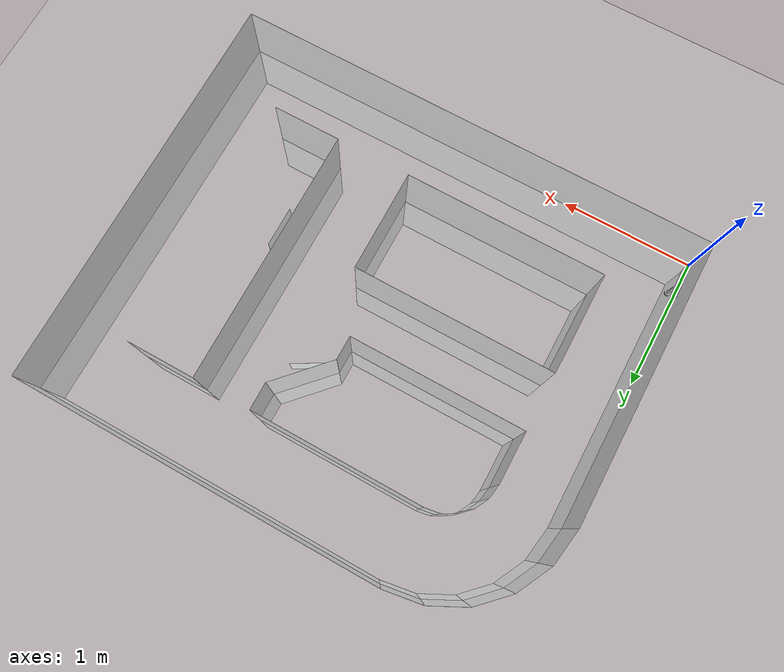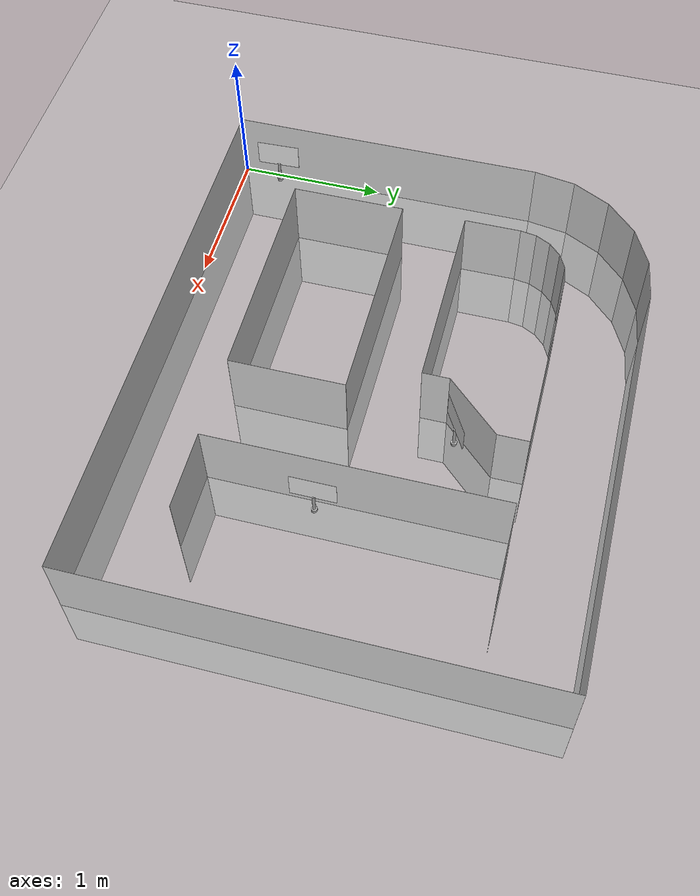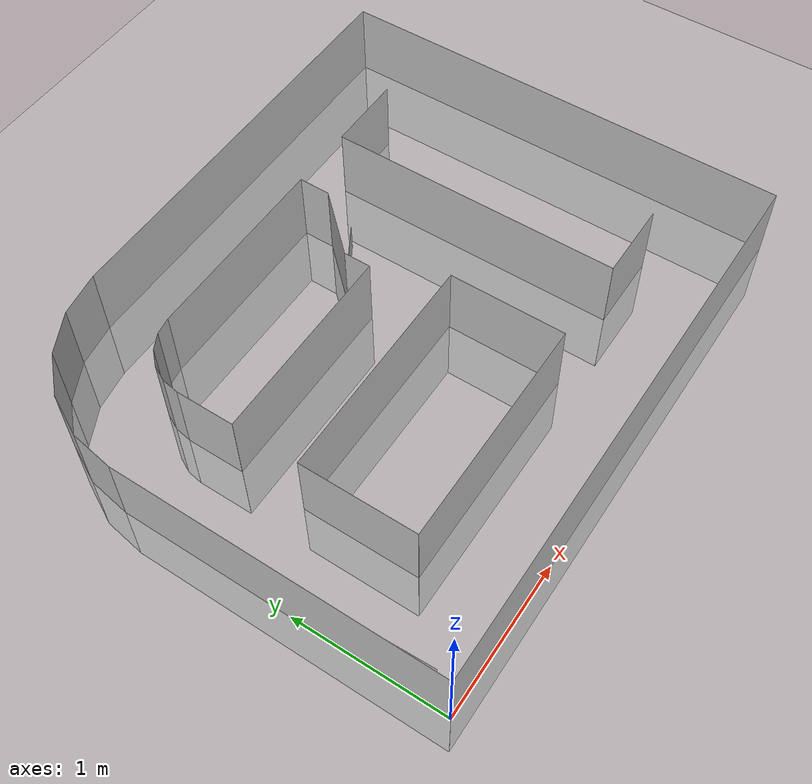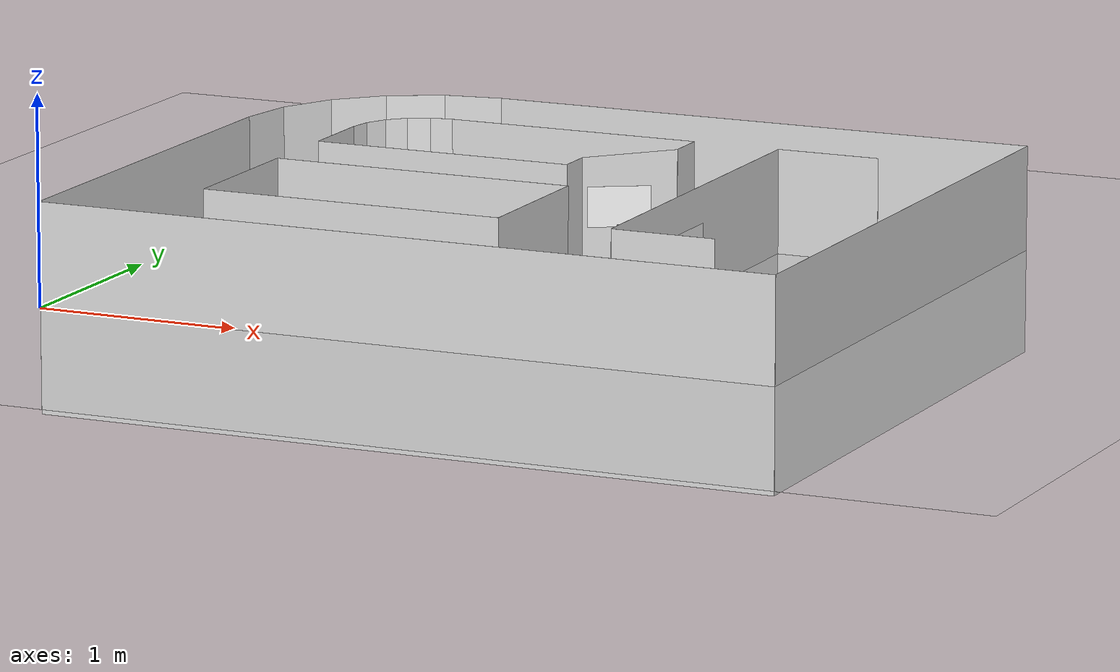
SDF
<sdf version="1.6">
 <world name="default">
  <light name="sun" type="directional">
   <pose>0 0 10 0 -0 0</pose>
   <diffuse>0.8 0.8 0.8 1</diffuse>
   <specular>0.1 0.1 0.1 1</specular>
   <attenuation>
    <range>1000</range>
    <constant>0.9</constant>
    <linear>0.01</linear>
    <quadratic>0.001</quadratic>
   </attenuation>
   <direction>-0.5 0.5 -1</direction>
  </light>
  <model name="ground_plane">
   <static>1</static>
   <link name="link">
    <collision name="collision">
     <geometry><plane><normal>0 0 1</normal><size>100 100</size></plane></geometry>
     <surface><friction><ode><mu>100</mu><mu2>50</mu2></ode></friction></surface>
    </collision>
    <visual name="visual">
     <cast_shadows>0</cast_shadows>
     <geometry><plane><normal>0 0 1</normal><size>100 100</size></plane></geometry>
     <material>
      <script><uri>file://media/materials/scripts/gazebo.material</uri><name>Gazebo/Grey</name></script>
     </material>
    </visual>
   </link>
  </model>
  <model name="wall_0">
   <static>1</static>
   <link name="link">
    <collision name="collision"><geometry><box><size>2.1336 0.001 1</size></box></geometry></collision>
    <visual name="visual">
     <geometry><box><size>2.1336 0.001 1</size></box></geometry>
     <material>
      <script><name>Gazebo/White</name><uri>file://media/materials/scripts/gazebo.material</uri></script>
     </material>
    </visual>
   </link>
   <pose>0 1.0668 0 0 -0 1.5708</pose>
  </model>
  <model name="wall_1">
   <static>1</static>
   <link name="link">
    <collision name="collision"><geometry><box><size>0.286088 0.001 1</size></box></geometry></collision>
    <visual name="visual">
     <geometry><box><size>0.286088 0.001 1</size></box></geometry>
     <material>
      <script><name>Gazebo/White</name><uri>file://media/materials/scripts/gazebo.material</uri></script>
     </material>
    </visual>
   </link>
   <pose>0.022377 2.27489 0 0 -0 1.41372</pose>
  </model>
  <model name="wall_2">
   <static>1</static>
   <link name="link">
    <collision name="collision"><geometry><box><size>0.286088 0.001 1</size></box></geometry></collision>
    <visual name="visual">
     <geometry><box><size>0.286088 0.001 1</size></box></geometry>
     <material>
      <script><name>Gazebo/White</name><uri>file://media/materials/scripts/gazebo.material</uri></script>
     </material>
    </visual>
   </link>
   <pose>0.109695 2.54362 0 0 -0 1.09956</pose>
  </model>
  <model name="wall_3">
   <static>1</static>
   <link name="link">
    <collision name="collision"><geometry><box><size>0.286088 0.001 1</size></box></geometry></collision>
    <visual name="visual">
     <geometry><box><size>0.286088 0.001 1</size></box></geometry>
     <material>
      <script><name>Gazebo/White</name><uri>file://media/materials/scripts/gazebo.material</uri></script>
     </material>
    </visual>
   </link>
   <pose>0.275783 2.77222 0 0 -0 0.785398</pose>
  </model>
  <model name="wall_4">
   <static>1</static>
   <link name="link">
    <collision name="collision"><geometry><box><size>0.286088 0.001 1</size></box></geometry></collision>
    <visual name="visual">
     <geometry><box><size>0.286088 0.001 1</size></box></geometry>
     <material>
      <script><name>Gazebo/White</name><uri>file://media/materials/scripts/gazebo.material</uri></script>
     </material>
    </visual>
   </link>
   <pose>0.504383 2.93831 0 0 -0 0.471239</pose>
  </model>
  <model name="wall_5">
   <static>1</static>
   <link name="link">
    <collision name="collision"><geometry><box><size>0.286088 0.001 1</size></box></geometry></collision>
    <visual name="visual">
     <geometry><box><size>0.286088 0.001 1</size></box></geometry>
     <material>
      <script><name>Gazebo/White</name><uri>file://media/materials/scripts/gazebo.material</uri></script>
     </material>
    </visual>
   </link>
   <pose>0.773119 3.02563 0 0 -0 0.15708</pose>
  </model>
  <model name="wall_6">
   <static>1</static>
   <link name="link">
    <collision name="collision"><geometry><box><size>2.74321 0.001 1</size></box></geometry></collision>
    <visual name="visual">
     <geometry><box><size>2.74321 0.001 1</size></box></geometry>
     <material>
      <script><name>Gazebo/White</name><uri>file://media/materials/scripts/gazebo.material</uri></script>
     </material>
    </visual>
   </link>
   <pose>2.286 3.04801 0 0 -0 0</pose>
  </model>
  <model name="wall_7">
   <static>1</static>
   <link name="link">
    <collision name="collision"><geometry><box><size>3.04801 0.001 1</size></box></geometry></collision>
    <visual name="visual">
     <geometry><box><size>3.04801 0.001 1</size></box></geometry>
     <material>
      <script><name>Gazebo/White</name><uri>file://media/materials/scripts/gazebo.material</uri></script>
     </material>
    </visual>
   </link>
   <pose>3.65761 1.524 0 0 0 -1.5708</pose>
  </model>
  <model name="wall_8">
   <static>1</static>
   <link name="link">
    <collision name="collision"><geometry><box><size>3.65761 0.001 1</size></box></geometry></collision>
    <visual name="visual">
     <geometry><box><size>3.65761 0.001 1</size></box></geometry>
     <material>
      <script><name>Gazebo/White</name><uri>file://media/materials/scripts/gazebo.material</uri></script>
     </material>
    </visual>
   </link>
   <pose>1.8288 0 0 0 0 -3.14159</pose>
  </model>
  <model name="wall_9">
   <static>1</static>
   <link name="link">
    <collision name="collision"><geometry><box><size>0.762002 0.001 1</size></box></geometry></collision>
    <visual name="visual">
     <geometry><box><size>0.762002 0.001 1</size></box></geometry>
     <material>
      <script><name>Gazebo/White</name><uri>file://media/materials/scripts/gazebo.material</uri></script>
     </material>
    </visual>
   </link>
   <pose>0.558801 0.939802 0 0 -0 1.5708</pose>
  </model>
  <model name="wall_10">
   <static>1</static>
   <link name="link">
    <collision name="collision"><geometry><box><size>1.4986 0.001 1</size></box></geometry></collision>
    <visual name="visual">
     <geometry><box><size>1.4986 0.001 1</size></box></geometry>
     <material>
      <script><name>Gazebo/White</name><uri>file://media/materials/scripts/gazebo.material</uri></script>
     </material>
    </visual>
   </link>
   <pose>1.3081 1.3208 0 0 -0 0</pose>
  </model>
  <model name="wall_11">
   <static>1</static>
   <link name="link">
    <collision name="collision"><geometry><box><size>0.762002 0.001 1</size></box></geometry></collision>
    <visual name="visual">
     <geometry><box><size>0.762002 0.001 1</size></box></geometry>
     <material>
      <script><name>Gazebo/White</name><uri>file://media/materials/scripts/gazebo.material</uri></script>
     </material>
    </visual>
   </link>
   <pose>2.0574 0.939802 0 0 0 -1.5708</pose>
  </model>
  <model name="wall_12">
   <static>1</static>
   <link name="link">
    <collision name="collision"><geometry><box><size>1.4986 0.001 1</size></box></geometry></collision>
    <visual name="visual">
     <geometry><box><size>1.4986 0.001 1</size></box></geometry>
     <material>
      <script><name>Gazebo/White</name><uri>file://media/materials/scripts/gazebo.material</uri></script>
     </material>
    </visual>
   </link>
   <pose>1.3081 0.558801 0 0 0 -3.14159</pose>
  </model>
  <model name="wall_13">
   <static>1</static>
   <link name="link">
    <collision name="collision"><geometry><box><size>0.381001 0.001 1</size></box></geometry></collision>
    <visual name="visual">
     <geometry><box><size>0.381001 0.001 1</size></box></geometry>
     <material>
      <script><name>Gazebo/White</name><uri>file://media/materials/scripts/gazebo.material</uri></script>
     </material>
    </visual>
   </link>
   <pose>0.558801 1.9431 0 0 -0 1.5708</pose>
  </model>
  <model name="wall_14">
   <static>1</static>
   <link name="link">
    <collision name="collision"><geometry><box><size>0.111256 0.001 1</size></box></geometry></collision>
    <visual name="visual">
     <geometry><box><size>0.111256 0.001 1</size></box></geometry>
     <material>
      <script><name>Gazebo/White</name><uri>file://media/materials/scripts/gazebo.material</uri></script>
     </material>
    </visual>
   </link>
   <pose>0.567503 2.18855 0 0 -0 1.41372</pose>
  </model>
  <model name="wall_15">
   <static>1</static>
   <link name="link">
    <collision name="collision"><geometry><box><size>0.111256 0.001 1</size></box></geometry></collision>
    <visual name="visual">
     <geometry><box><size>0.111256 0.001 1</size></box></geometry>
     <material>
      <script><name>Gazebo/White</name><uri>file://media/materials/scripts/gazebo.material</uri></script>
     </material>
    </visual>
   </link>
   <pose>0.60146 2.29306 0 0 -0 1.09956</pose>
  </model>
  <model name="wall_16">
   <static>1</static>
   <link name="link">
    <collision name="collision"><geometry><box><size>0.111256 0.001 1</size></box></geometry></collision>
    <visual name="visual">
     <geometry><box><size>0.111256 0.001 1</size></box></geometry>
     <material>
      <script><name>Gazebo/White</name><uri>file://media/materials/scripts/gazebo.material</uri></script>
     </material>
    </visual>
   </link>
   <pose>0.66605 2.38196 0 0 -0 0.785398</pose>
  </model>
  <model name="wall_17">
   <static>1</static>
   <link name="link">
    <collision name="collision"><geometry><box><size>0.111256 0.001 1</size></box></geometry></collision>
    <visual name="visual">
     <geometry><box><size>0.111256 0.001 1</size></box></geometry>
     <material>
      <script><name>Gazebo/White</name><uri>file://media/materials/scripts/gazebo.material</uri></script>
     </material>
    </visual>
   </link>
   <pose>0.75495 2.44655 0 0 -0 0.471239</pose>
  </model>
  <model name="wall_18">
   <static>1</static>
   <link name="link">
    <collision name="collision"><geometry><box><size>0.111256 0.001 1</size></box></geometry></collision>
    <visual name="visual">
     <geometry><box><size>0.111256 0.001 1</size></box></geometry>
     <material>
      <script><name>Gazebo/White</name><uri>file://media/materials/scripts/gazebo.material</uri></script>
     </material>
    </visual>
   </link>
   <pose>0.859458 2.4805 0 0 -0 0.15708</pose>
  </model>
  <model name="wall_19">
   <static>1</static>
   <link name="link">
    <collision name="collision"><geometry><box><size>1.27 0.001 1</size></box></geometry></collision>
    <visual name="visual">
     <geometry><box><size>1.27 0.001 1</size></box></geometry>
     <material>
      <script><name>Gazebo/White</name><uri>file://media/materials/scripts/gazebo.material</uri></script>
     </material>
    </visual>
   </link>
   <pose>1.5494 2.48921 0 0 -0 0</pose>
  </model>
  <model name="wall_20">
   <static>1</static>
   <link name="link">
    <collision name="collision"><geometry><box><size>0.2032 0.001 1</size></box></geometry></collision>
    <visual name="visual">
     <geometry><box><size>0.2032 0.001 1</size></box></geometry>
     <material>
      <script><name>Gazebo/White</name><uri>file://media/materials/scripts/gazebo.material</uri></script>
     </material>
    </visual>
   </link>
   <pose>2.1844 2.38761 0 0 0 -1.5708</pose>
  </model>
  <model name="wall_21">
   <static>1</static>
   <link name="link">
    <collision name="collision"><geometry><box><size>0.485267 0.001 1</size></box></geometry></collision>
    <visual name="visual">
     <geometry><box><size>0.485267 0.001 1</size></box></geometry>
     <material>
      <script><name>Gazebo/White</name><uri>file://media/materials/scripts/gazebo.material</uri></script>
     </material>
    </visual>
   </link>
   <pose>2.0193 2.1082 0 0 0 -2.31917</pose>
  </model>
  <model name="wall_22">
   <static>1</static>
   <link name="link">
    <collision name="collision"><geometry><box><size>0.1778 0.001 1</size></box></geometry></collision>
    <visual name="visual">
     <geometry><box><size>0.1778 0.001 1</size></box></geometry>
     <material>
      <script><name>Gazebo/White</name><uri>file://media/materials/scripts/gazebo.material</uri></script>
     </material>
    </visual>
   </link>
   <pose>1.8542 1.8415 0 0 0 -1.5708</pose>
  </model>
  <model name="wall_23">
   <static>1</static>
   <link name="link">
    <collision name="collision"><geometry><box><size>1.2954 0.001 1</size></box></geometry></collision>
    <visual name="visual">
     <geometry><box><size>1.2954 0.001 1</size></box></geometry>
     <material>
      <script><name>Gazebo/White</name><uri>file://media/materials/scripts/gazebo.material</uri></script>
     </material>
    </visual>
   </link>
   <pose>1.2065 1.7526 0 0 0 -3.14159</pose>
  </model>
  <model name="wall_24">
   <static>1</static>
   <link name="link">
    <collision name="collision"><geometry><box><size>0.508001 0.001 1</size></box></geometry></collision>
    <visual name="visual">
     <geometry><box><size>0.508001 0.001 1</size></box></geometry>
     <material>
      <script><name>Gazebo/White</name><uri>file://media/materials/scripts/gazebo.material</uri></script>
     </material>
    </visual>
   </link>
   <pose>2.87021 2.48921 0 0 -0 0</pose>
  </model>
  <model name="wall_25">
   <static>1</static>
   <link name="link">
    <collision name="collision"><geometry><box><size>0.508001 0.001 1</size></box></geometry></collision>
    <visual name="visual">
     <geometry><box><size>0.508001 0.001 1</size></box></geometry>
     <material>
      <script><name>Gazebo/White</name><uri>file://media/materials/scripts/gazebo.material</uri></script>
     </material>
    </visual>
   </link>
   <pose>2.87021 0.558801 0 0 0 -3.14159</pose>
  </model>
  <model name="wall_26">
   <static>1</static>
   <link name="link">
    <collision name="collision"><geometry><box><size>1.9304 0.001 1</size></box></geometry></collision>
    <visual name="visual">
     <geometry><box><size>1.9304 0.001 1</size></box></geometry>
     <material>
      <script><name>Gazebo/White</name><uri>file://media/materials/scripts/gazebo.material</uri></script>
     </material>
    </visual>
   </link>
   <pose>2.6162 1.524 0 0 -0 1.5708</pose>
  </model>
  <gravity>0 0 -9.8</gravity>
  <magnetic_field>6e-06 2.3e-05 -4.2e-05</magnetic_field>
  <atmosphere type="adiabatic"/>
  <physics name="default_physics" default="0" type="ode">
   <max_step_size>0.001</max_step_size>
   <real_time_factor>1</real_time_factor>
   <real_time_update_rate>1000</real_time_update_rate>
  </physics>
  <scene><ambient>0.4 0.4 0.4 1</ambient><background>0.7 0.7 0.7 1</background><shadows>1</shadows></scene>
  <spherical_coordinates>
   <surface_model>EARTH_WGS84</surface_model>
   <latitude_deg>0</latitude_deg>
   <longitude_deg>0</longitude_deg>
   <elevation>0</elevation>
   <heading_deg>0</heading_deg>
  </spherical_coordinates>
  <model name="apple_sign">
   <link name="plate">
    <pose>0 0 0.2425 0 -0 0</pose>
    <inertial>
     <inertia><ixx>0.1</ixx><ixy>0</ixy><ixz>0</ixz><iyy>0.1</iyy><iyz>0</iyz><izz>0.1</izz></inertia>
     <mass>0.1</mass>
    </inertial>
    <visual name="visual">
     <geometry><box><size>0.001 0.3 0.195</size></box></geometry>
     <material>
      <script>
       <uri>model://apple_sign/materials/scripts</uri>
       <uri>model://apple_sign/materials/textures</uri>
       <name>Apple/Diffuse</name>
      </script>
      <ambient>1 1 1 1</ambient>
      <diffuse>1 1 1 1</diffuse>
      <specular>0 0 0 1</specular>
      <emissive>0 0 0 1</emissive>
     </material>
    </visual>
    <collision name="collision">
     <geometry><box><size>0.001 0.1 0.065</size></box></geometry>
     <surface>
      <friction>
       <ode><mu>1</mu><mu2>1</mu2><fdir1>0 0 0</fdir1><slip1>0</slip1><slip2>0</slip2></ode>
       <torsional>
        <coefficient>1</coefficient>
        <patch_radius>0</patch_radius>
        <surface_radius>0</surface_radius>
        <use_patch_radius>1</use_patch_radius>
        <ode><slip>0</slip></ode>
       </torsional>
      </friction>
      <bounce><restitution_coefficient>0</restitution_coefficient><threshold>1e+06</threshold></bounce>
      <contact>
       <collide_without_contact>0</collide_without_contact>
       <collide_without_contact_bitmask>1</collide_without_contact_bitmask>
       <collide_bitmask>1</collide_bitmask>
       <ode>
        <soft_cfm>0</soft_cfm>
        <soft_erp>0.2</soft_erp>
        <kp>1e+13</kp>
        <kd>1</kd>
        <max_vel>0.01</max_vel>
        <min_depth>0</min_depth>
       </ode>
       <bullet>
        <split_impulse>1</split_impulse>
        <split_impulse_penetration_threshold>-0.01</split_impulse_penetration_threshold>
        <soft_cfm>0</soft_cfm>
        <soft_erp>0.2</soft_erp>
        <kp>1e+13</kp>
        <kd>1</kd>
       </bullet>
      </contact>
     </surface>
    </collision>
   </link>
   <link name="base">
    <inertial>
     <inertia><ixx>0.1</ixx><ixy>0</ixy><ixz>0</ixz><iyy>0.1</iyy><iyz>0</iyz><izz>0.1</izz></inertia>
     <mass>0.1</mass>
    </inertial>
    <visual name="visual">
     <geometry><cylinder><radius>0.02</radius><length>0.02</length></cylinder></geometry>
    </visual>
    <collision name="collision">
     <geometry><cylinder><radius>0.02</radius><length>0.02</length></cylinder></geometry>
     <surface>
      <friction>
       <ode><mu>0.01</mu><mu2>0.01</mu2><fdir1>0 0 0</fdir1><slip1>0</slip1><slip2>0</slip2></ode>
       <torsional>
        <coefficient>1</coefficient>
        <patch_radius>0</patch_radius>
        <surface_radius>0</surface_radius>
        <use_patch_radius>1</use_patch_radius>
        <ode><slip>0</slip></ode>
       </torsional>
      </friction>
      <bounce><restitution_coefficient>0</restitution_coefficient><threshold>1e+06</threshold></bounce>
      <contact>
       <collide_without_contact>0</collide_without_contact>
       <collide_without_contact_bitmask>1</collide_without_contact_bitmask>
       <collide_bitmask>1</collide_bitmask>
       <ode>
        <soft_cfm>0</soft_cfm>
        <soft_erp>0.2</soft_erp>
        <kp>1e+13</kp>
        <kd>1</kd>
        <max_vel>0.01</max_vel>
        <min_depth>0</min_depth>
       </ode>
       <bullet>
        <split_impulse>1</split_impulse>
        <split_impulse_penetration_threshold>-0.01</split_impulse_penetration_threshold>
        <soft_cfm>0</soft_cfm>
        <soft_erp>0.2</soft_erp>
        <kp>1e+13</kp>
        <kd>1</kd>
       </bullet>
      </contact>
     </surface>
    </collision>
   </link>
   <link name="pole">
    <pose>-0 0 0.08 0 -0 0</pose>
    <inertial>
     <inertia><ixx>1</ixx><ixy>0</ixy><ixz>0</ixz><iyy>1</iyy><iyz>0</iyz><izz>1</izz></inertia>
     <mass>1</mass>
    </inertial>
    <visual name="visual">
     <geometry><cylinder><radius>0.01</radius><length>0.15</length></cylinder></geometry>
    </visual>
    <collision name="collision">
     <geometry><cylinder><radius>0.01</radius><length>0.2</length></cylinder></geometry>
     <surface>
      <friction>
       <ode><mu>1</mu><mu2>1</mu2><fdir1>0 0 0</fdir1><slip1>0</slip1><slip2>0</slip2></ode>
       <torsional>
        <coefficient>1</coefficient>
        <patch_radius>0</patch_radius>
        <surface_radius>0</surface_radius>
        <use_patch_radius>1</use_patch_radius>
        <ode><slip>0</slip></ode>
       </torsional>
      </friction>
      <bounce><restitution_coefficient>0</restitution_coefficient><threshold>1e+06</threshold></bounce>
      <contact>
       <collide_without_contact>0</collide_without_contact>
       <collide_without_contact_bitmask>1</collide_without_contact_bitmask>
       <collide_bitmask>1</collide_bitmask>
       <ode>
        <soft_cfm>0</soft_cfm>
        <soft_erp>0.2</soft_erp>
        <kp>1e+13</kp>
        <kd>1</kd>
        <max_vel>0.01</max_vel>
        <min_depth>0</min_depth>
       </ode>
       <bullet>
        <split_impulse>1</split_impulse>
        <split_impulse_penetration_threshold>-0.01</split_impulse_penetration_threshold>
        <soft_cfm>0</soft_cfm>
        <soft_erp>0.2</soft_erp>
        <kp>1e+13</kp>
        <kd>1</kd>
       </bullet>
      </contact>
     </surface>
    </collision>
   </link>
   <joint name="base_pole" type="fixed">
    <parent>base</parent>
    <child>pole</child>
    <pose>0 0 0.02 0 -0 0</pose>
    <physics>
     <ode><limit><cfm>0</cfm><erp>0.2</erp></limit><suspension><cfm>0</cfm><erp>0.2</erp></suspension></ode>
    </physics>
   </joint>
   <joint name="pole_plate" type="fixed">
    <parent>pole</parent>
    <child>plate</child>
    <pose>0 0 0.1 0 -0 0</pose>
    <physics>
     <ode><limit><cfm>0</cfm><erp>0.2</erp></limit><suspension><cfm>0</cfm><erp>0.2</erp></suspension></ode>
    </physics>
   </joint>
   <static>0</static>
   <pose>2.68856 1.27982 0.020001 4.3e-05 -0.000122 3.14056</pose>
  </model>
  <model name="banana_sign">
   <link name="plate">
    <pose>0 0 0.2425 0 -0 0</pose>
    <inertial>
     <inertia><ixx>0.1</ixx><ixy>0</ixy><ixz>0</ixz><iyy>0.1</iyy><iyz>0</iyz><izz>0.1</izz></inertia>
     <mass>0.1</mass>
    </inertial>
    <visual name="visual">
     <geometry><box><size>0.001 0.3 0.195</size></box></geometry>
     <material>
      <script>
       <uri>model://banana_sign/materials/scripts</uri>
       <uri>model://banana_sign/materials/textures</uri>
       <name>Banana/Diffuse</name>
      </script>
      <ambient>1 1 1 1</ambient>
      <diffuse>1 1 1 1</diffuse>
      <specular>0 0 0 1</specular>
      <emissive>0 0 0 1</emissive>
     </material>
    </visual>
    <collision name="collision">
     <geometry><box><size>0.001 0.1 0.065</size></box></geometry>
     <surface>
      <friction>
       <ode><mu>1</mu><mu2>1</mu2><fdir1>0 0 0</fdir1><slip1>0</slip1><slip2>0</slip2></ode>
       <torsional>
        <coefficient>1</coefficient>
        <patch_radius>0</patch_radius>
        <surface_radius>0</surface_radius>
        <use_patch_radius>1</use_patch_radius>
        <ode><slip>0</slip></ode>
       </torsional>
      </friction>
      <bounce><restitution_coefficient>0</restitution_coefficient><threshold>1e+06</threshold></bounce>
      <contact>
       <collide_without_contact>0</collide_without_contact>
       <collide_without_contact_bitmask>1</collide_without_contact_bitmask>
       <collide_bitmask>1</collide_bitmask>
       <ode>
        <soft_cfm>0</soft_cfm>
        <soft_erp>0.2</soft_erp>
        <kp>1e+13</kp>
        <kd>1</kd>
        <max_vel>0.01</max_vel>
        <min_depth>0</min_depth>
       </ode>
       <bullet>
        <split_impulse>1</split_impulse>
        <split_impulse_penetration_threshold>-0.01</split_impulse_penetration_threshold>
        <soft_cfm>0</soft_cfm>
        <soft_erp>0.2</soft_erp>
        <kp>1e+13</kp>
        <kd>1</kd>
       </bullet>
      </contact>
     </surface>
    </collision>
   </link>
   <link name="base">
    <inertial>
     <inertia><ixx>0.1</ixx><ixy>0</ixy><ixz>0</ixz><iyy>0.1</iyy><iyz>0</iyz><izz>0.1</izz></inertia>
     <mass>0.1</mass>
    </inertial>
    <visual name="visual">
     <geometry><cylinder><radius>0.02</radius><length>0.02</length></cylinder></geometry>
    </visual>
    <collision name="collision">
     <geometry><cylinder><radius>0.02</radius><length>0.02</length></cylinder></geometry>
     <surface>
      <friction>
       <ode><mu>0.01</mu><mu2>0.01</mu2><fdir1>0 0 0</fdir1><slip1>0</slip1><slip2>0</slip2></ode>
       <torsional>
        <coefficient>1</coefficient>
        <patch_radius>0</patch_radius>
        <surface_radius>0</surface_radius>
        <use_patch_radius>1</use_patch_radius>
        <ode><slip>0</slip></ode>
       </torsional>
      </friction>
      <bounce><restitution_coefficient>0</restitution_coefficient><threshold>1e+06</threshold></bounce>
      <contact>
       <collide_without_contact>0</collide_without_contact>
       <collide_without_contact_bitmask>1</collide_without_contact_bitmask>
       <collide_bitmask>1</collide_bitmask>
       <ode>
        <soft_cfm>0</soft_cfm>
        <soft_erp>0.2</soft_erp>
        <kp>1e+13</kp>
        <kd>1</kd>
        <max_vel>0.01</max_vel>
        <min_depth>0</min_depth>
       </ode>
       <bullet>
        <split_impulse>1</split_impulse>
        <split_impulse_penetration_threshold>-0.01</split_impulse_penetration_threshold>
        <soft_cfm>0</soft_cfm>
        <soft_erp>0.2</soft_erp>
        <kp>1e+13</kp>
        <kd>1</kd>
       </bullet>
      </contact>
     </surface>
    </collision>
   </link>
   <link name="pole">
    <pose>-0 0 0.08 0 -0 0</pose>
    <inertial>
     <inertia><ixx>1</ixx><ixy>0</ixy><ixz>0</ixz><iyy>1</iyy><iyz>0</iyz><izz>1</izz></inertia>
     <mass>1</mass>
    </inertial>
    <visual name="visual">
     <geometry><cylinder><radius>0.01</radius><length>0.15</length></cylinder></geometry>
    </visual>
    <collision name="collision">
     <geometry><cylinder><radius>0.01</radius><length>0.2</length></cylinder></geometry>
     <surface>
      <friction>
       <ode><mu>1</mu><mu2>1</mu2><fdir1>0 0 0</fdir1><slip1>0</slip1><slip2>0</slip2></ode>
       <torsional>
        <coefficient>1</coefficient>
        <patch_radius>0</patch_radius>
        <surface_radius>0</surface_radius>
        <use_patch_radius>1</use_patch_radius>
        <ode><slip>0</slip></ode>
       </torsional>
      </friction>
      <bounce><restitution_coefficient>0</restitution_coefficient><threshold>1e+06</threshold></bounce>
      <contact>
       <collide_without_contact>0</collide_without_contact>
       <collide_without_contact_bitmask>1</collide_without_contact_bitmask>
       <collide_bitmask>1</collide_bitmask>
       <ode>
        <soft_cfm>0</soft_cfm>
        <soft_erp>0.2</soft_erp>
        <kp>1e+13</kp>
        <kd>1</kd>
        <max_vel>0.01</max_vel>
        <min_depth>0</min_depth>
       </ode>
       <bullet>
        <split_impulse>1</split_impulse>
        <split_impulse_penetration_threshold>-0.01</split_impulse_penetration_threshold>
        <soft_cfm>0</soft_cfm>
        <soft_erp>0.2</soft_erp>
        <kp>1e+13</kp>
        <kd>1</kd>
       </bullet>
      </contact>
     </surface>
    </collision>
   </link>
   <joint name="base_pole" type="fixed">
    <parent>base</parent>
    <child>pole</child>
    <pose>0 0 0.02 0 -0 0</pose>
    <physics>
     <ode><limit><cfm>0</cfm><erp>0.2</erp></limit><suspension><cfm>0</cfm><erp>0.2</erp></suspension></ode>
    </physics>
   </joint>
   <joint name="pole_plate" type="fixed">
    <parent>pole</parent>
    <child>plate</child>
    <pose>0 0 0.1 0 -0 0</pose>
    <physics>
     <ode><limit><cfm>0</cfm><erp>0.2</erp></limit><suspension><cfm>0</cfm><erp>0.2</erp></suspension></ode>
    </physics>
   </joint>
   <static>0</static>
   <pose>0.052932 0.273035 0.020001 3.1e-05 7.1e-05 -3.10816</pose>
  </model>
  <model name="hot_dog_sign">
   <link name="plate">
    <pose>0 0 0.2425 0 -0 0</pose>
    <inertial>
     <inertia><ixx>0.1</ixx><ixy>0</ixy><ixz>0</ixz><iyy>0.1</iyy><iyz>0</iyz><izz>0.1</izz></inertia>
     <mass>0.1</mass>
    </inertial>
    <visual name="visual">
     <geometry><box><size>0.001 0.3 0.195</size></box></geometry>
     <material>
      <script>
       <uri>model://hot_dog/materials/scripts</uri>
       <uri>model://hot_dog/materials/textures</uri>
       <name>HotDog/Diffuse</name>
      </script>
      <ambient>1 1 1 1</ambient>
      <diffuse>1 1 1 1</diffuse>
      <specular>0 0 0 1</specular>
      <emissive>0 0 0 1</emissive>
     </material>
    </visual>
    <collision name="collision">
     <geometry><box><size>0.001 0.1 0.065</size></box></geometry>
     <surface>
      <friction>
       <ode><mu>1</mu><mu2>1</mu2><fdir1>0 0 0</fdir1><slip1>0</slip1><slip2>0</slip2></ode>
       <torsional>
        <coefficient>1</coefficient>
        <patch_radius>0</patch_radius>
        <surface_radius>0</surface_radius>
        <use_patch_radius>1</use_patch_radius>
        <ode><slip>0</slip></ode>
       </torsional>
      </friction>
      <bounce><restitution_coefficient>0</restitution_coefficient><threshold>1e+06</threshold></bounce>
      <contact>
       <collide_without_contact>0</collide_without_contact>
       <collide_without_contact_bitmask>1</collide_without_contact_bitmask>
       <collide_bitmask>1</collide_bitmask>
       <ode>
        <soft_cfm>0</soft_cfm>
        <soft_erp>0.2</soft_erp>
        <kp>1e+13</kp>
        <kd>1</kd>
        <max_vel>0.01</max_vel>
        <min_depth>0</min_depth>
       </ode>
       <bullet>
        <split_impulse>1</split_impulse>
        <split_impulse_penetration_threshold>-0.01</split_impulse_penetration_threshold>
        <soft_cfm>0</soft_cfm>
        <soft_erp>0.2</soft_erp>
        <kp>1e+13</kp>
        <kd>1</kd>
       </bullet>
      </contact>
     </surface>
    </collision>
   </link>
   <link name="base">
    <inertial>
     <inertia><ixx>0.1</ixx><ixy>0</ixy><ixz>0</ixz><iyy>0.1</iyy><iyz>0</iyz><izz>0.1</izz></inertia>
     <mass>0.1</mass>
    </inertial>
    <visual name="visual">
     <geometry><cylinder><radius>0.02</radius><length>0.02</length></cylinder></geometry>
    </visual>
    <collision name="collision">
     <geometry><cylinder><radius>0.02</radius><length>0.02</length></cylinder></geometry>
     <surface>
      <friction>
       <ode><mu>0.01</mu><mu2>0.01</mu2><fdir1>0 0 0</fdir1><slip1>0</slip1><slip2>0</slip2></ode>
       <torsional>
        <coefficient>1</coefficient>
        <patch_radius>0</patch_radius>
        <surface_radius>0</surface_radius>
        <use_patch_radius>1</use_patch_radius>
        <ode><slip>0</slip></ode>
       </torsional>
      </friction>
      <bounce><restitution_coefficient>0</restitution_coefficient><threshold>1e+06</threshold></bounce>
      <contact>
       <collide_without_contact>0</collide_without_contact>
       <collide_without_contact_bitmask>1</collide_without_contact_bitmask>
       <collide_bitmask>1</collide_bitmask>
       <ode>
        <soft_cfm>0</soft_cfm>
        <soft_erp>0.2</soft_erp>
        <kp>1e+13</kp>
        <kd>1</kd>
        <max_vel>0.01</max_vel>
        <min_depth>0</min_depth>
       </ode>
       <bullet>
        <split_impulse>1</split_impulse>
        <split_impulse_penetration_threshold>-0.01</split_impulse_penetration_threshold>
        <soft_cfm>0</soft_cfm>
        <soft_erp>0.2</soft_erp>
        <kp>1e+13</kp>
        <kd>1</kd>
       </bullet>
      </contact>
     </surface>
    </collision>
   </link>
   <link name="pole">
    <pose>-0 0 0.08 0 -0 0</pose>
    <inertial>
     <inertia><ixx>1</ixx><ixy>0</ixy><ixz>0</ixz><iyy>1</iyy><iyz>0</iyz><izz>1</izz></inertia>
     <mass>1</mass>
    </inertial>
    <visual name="visual">
     <geometry><cylinder><radius>0.01</radius><length>0.15</length></cylinder></geometry>
    </visual>
    <collision name="collision">
     <geometry><cylinder><radius>0.01</radius><length>0.2</length></cylinder></geometry>
     <surface>
      <friction>
       <ode><mu>1</mu><mu2>1</mu2><fdir1>0 0 0</fdir1><slip1>0</slip1><slip2>0</slip2></ode>
       <torsional>
        <coefficient>1</coefficient>
        <patch_radius>0</patch_radius>
        <surface_radius>0</surface_radius>
        <use_patch_radius>1</use_patch_radius>
        <ode><slip>0</slip></ode>
       </torsional>
      </friction>
      <bounce><restitution_coefficient>0</restitution_coefficient><threshold>1e+06</threshold></bounce>
      <contact>
       <collide_without_contact>0</collide_without_contact>
       <collide_without_contact_bitmask>1</collide_without_contact_bitmask>
       <collide_bitmask>1</collide_bitmask>
       <ode>
        <soft_cfm>0</soft_cfm>
        <soft_erp>0.2</soft_erp>
        <kp>1e+13</kp>
        <kd>1</kd>
        <max_vel>0.01</max_vel>
        <min_depth>0</min_depth>
       </ode>
       <bullet>
        <split_impulse>1</split_impulse>
        <split_impulse_penetration_threshold>-0.01</split_impulse_penetration_threshold>
        <soft_cfm>0</soft_cfm>
        <soft_erp>0.2</soft_erp>
        <kp>1e+13</kp>
        <kd>1</kd>
       </bullet>
      </contact>
     </surface>
    </collision>
   </link>
   <joint name="base_pole" type="fixed">
    <parent>base</parent>
    <child>pole</child>
    <pose>0 0 0.02 0 -0 0</pose>
    <physics>
     <ode><limit><cfm>0</cfm><erp>0.2</erp></limit><suspension><cfm>0</cfm><erp>0.2</erp></suspension></ode>
    </physics>
   </joint>
   <joint name="pole_plate" type="fixed">
    <parent>pole</parent>
    <child>plate</child>
    <pose>0 0 0.1 0 -0 0</pose>
    <physics>
     <ode><limit><cfm>0</cfm><erp>0.2</erp></limit><suspension><cfm>0</cfm><erp>0.2</erp></suspension></ode>
    </physics>
   </joint>
   <static>0</static>
   <pose>2.00587 2.01153 0.02 7e-05 -3.2e-05 -1.03778</pose>
  </model>
 </world>
</sdf>
